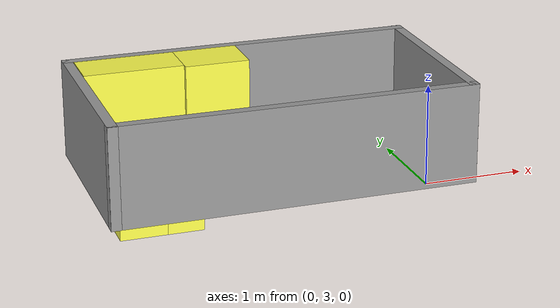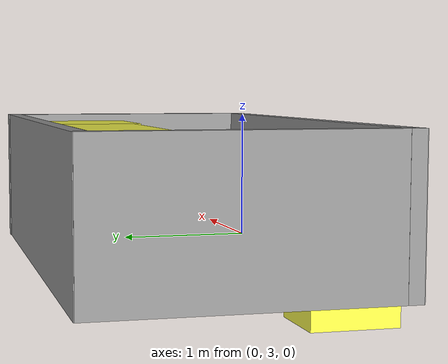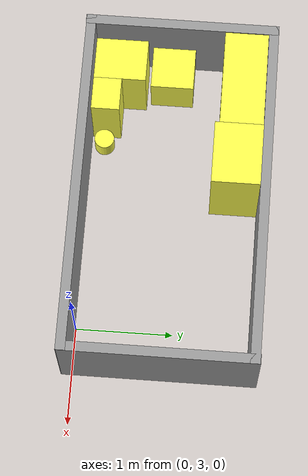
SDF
<?xml version='1.0'?>
<sdf version='1.7'>
  <model name='maze_d'>
    <link name='Wall_11'>
      <pose>-3.06869 3.88249 0 0 0 -1.5708</pose>
      <self_collide>0</self_collide>
      <enable_wind>0</enable_wind>
      <kinematic>0</kinematic>
      <gravity>1</gravity>
      <inertial>
        <mass>1</mass>
        <pose>0 0 0 0 -0 0</pose>
        <inertia>
          <ixx>1</ixx>
          <ixy>0</ixy>
          <ixz>0</ixz>
          <iyy>1</iyy>
          <iyz>0</iyz>
          <izz>1</izz>
        </inertia>
      </inertial>
      <visual name='Wall_11_Visual'>
        <pose>0 0 0.5 0 -0 0</pose>
        <geometry>
          <box>
            <size>2 0.1 1</size>
          </box>
        </geometry>
        <material>
          <script>
            <uri>file://media/materials/scripts/gazebo.material</uri>
            <name>Gazebo/Grey</name>
          </script>
          <ambient>1 1 1 1</ambient>
          <shader type='pixel'>
            <normal_map>__default__</normal_map>
          </shader>
          <diffuse>0.7 0.7 0.7 1</diffuse>
          <specular>0.01 0.01 0.01 1</specular>
          <emissive>0 0 0 1</emissive>
        </material>
        <transparency>0</transparency>
        <cast_shadows>1</cast_shadows>
      </visual>
      <collision name='Wall_11_Collision'>
        <laser_retro>0</laser_retro>
        <max_contacts>10</max_contacts>
        <pose>0 0 0.5 0 -0 0</pose>
        <geometry>
          <box>
            <size>2 0.1 1</size>
          </box>
        </geometry>
        <surface>
          <friction>
            <ode>
              <mu>1</mu>
              <mu2>1</mu2>
              <fdir1>0 0 0</fdir1>
              <slip1>0</slip1>
              <slip2>0</slip2>
            </ode>
            <torsional>
              <coefficient>1</coefficient>
              <patch_radius>0</patch_radius>
              <surface_radius>0</surface_radius>
              <use_patch_radius>1</use_patch_radius>
              <ode>
                <slip>0</slip>
              </ode>
            </torsional>
          </friction>
          <bounce>
            <restitution_coefficient>0</restitution_coefficient>
            <threshold>1e+06</threshold>
          </bounce>
          <contact>
            <collide_without_contact>0</collide_without_contact>
            <collide_without_contact_bitmask>1</collide_without_contact_bitmask>
            <collide_bitmask>1</collide_bitmask>
            <ode>
              <soft_cfm>0</soft_cfm>
              <soft_erp>0.2</soft_erp>
              <kp>1e+13</kp>
              <kd>1</kd>
              <max_vel>0.01</max_vel>
              <min_depth>0</min_depth>
            </ode>
            <bullet>
              <split_impulse>1</split_impulse>
              <split_impulse_penetration_threshold>-0.01</split_impulse_penetration_threshold>
              <soft_cfm>0</soft_cfm>
              <soft_erp>0.2</soft_erp>
              <kp>1e+13</kp>
              <kd>1</kd>
            </bullet>
          </contact>
        </surface>
      </collision>
    </link>
    <link name='Wall_11_clone'>
      <pose>0.434004 3.89294 0 0 0 -1.5708</pose>
      <self_collide>0</self_collide>
      <enable_wind>0</enable_wind>
      <kinematic>0</kinematic>
      <gravity>1</gravity>
      <inertial>
        <mass>1</mass>
        <pose>0 0 0 0 -0 0</pose>
        <inertia>
          <ixx>1</ixx>
          <ixy>0</ixy>
          <ixz>0</ixz>
          <iyy>1</iyy>
          <iyz>0</iyz>
          <izz>1</izz>
        </inertia>
      </inertial>
      <visual name='Wall_11_Visual'>
        <pose>0 0 0.5 0 -0 0</pose>
        <geometry>
          <box>
            <size>2 0.1 1</size>
          </box>
        </geometry>
        <material>
          <script>
            <uri>file://media/materials/scripts/gazebo.material</uri>
            <name>Gazebo/Grey</name>
          </script>
          <ambient>1 1 1 1</ambient>
          <shader type='pixel'>
            <normal_map>__default__</normal_map>
          </shader>
          <diffuse>0.7 0.7 0.7 1</diffuse>
          <specular>0.01 0.01 0.01 1</specular>
          <emissive>0 0 0 1</emissive>
        </material>
        <transparency>0</transparency>
        <cast_shadows>1</cast_shadows>
      </visual>
      <collision name='Wall_11_Collision'>
        <laser_retro>0</laser_retro>
        <max_contacts>10</max_contacts>
        <pose>0 0 0.5 0 -0 0</pose>
        <geometry>
          <box>
            <size>2 0.1 1</size>
          </box>
        </geometry>
        <surface>
          <friction>
            <ode>
              <mu>1</mu>
              <mu2>1</mu2>
              <fdir1>0 0 0</fdir1>
              <slip1>0</slip1>
              <slip2>0</slip2>
            </ode>
            <torsional>
              <coefficient>1</coefficient>
              <patch_radius>0</patch_radius>
              <surface_radius>0</surface_radius>
              <use_patch_radius>1</use_patch_radius>
              <ode>
                <slip>0</slip>
              </ode>
            </torsional>
          </friction>
          <bounce>
            <restitution_coefficient>0</restitution_coefficient>
            <threshold>1e+06</threshold>
          </bounce>
          <contact>
            <collide_without_contact>0</collide_without_contact>
            <collide_without_contact_bitmask>1</collide_without_contact_bitmask>
            <collide_bitmask>1</collide_bitmask>
            <ode>
              <soft_cfm>0</soft_cfm>
              <soft_erp>0.2</soft_erp>
              <kp>1e+13</kp>
              <kd>1</kd>
              <max_vel>0.01</max_vel>
              <min_depth>0</min_depth>
            </ode>
            <bullet>
              <split_impulse>1</split_impulse>
              <split_impulse_penetration_threshold>-0.01</split_impulse_penetration_threshold>
              <soft_cfm>0</soft_cfm>
              <soft_erp>0.2</soft_erp>
              <kp>1e+13</kp>
              <kd>1</kd>
            </bullet>
          </contact>
        </surface>
      </collision>
    </link>
    <link name='Wall_16_clone'>
      <pose>-1.31639 4.83807 0 0 -0 3.14159</pose>
      <self_collide>0</self_collide>
      <enable_wind>0</enable_wind>
      <kinematic>0</kinematic>
      <gravity>1</gravity>
      <inertial>
        <mass>1</mass>
        <pose>0 0 0 0 -0 0</pose>
        <inertia>
          <ixx>1</ixx>
          <ixy>0</ixy>
          <ixz>0</ixz>
          <iyy>1</iyy>
          <iyz>0</iyz>
          <izz>1</izz>
        </inertia>
      </inertial>
      <visual name='Wall_16_Visual'>
        <pose>0 0 0.5 0 -0 0</pose>
        <geometry>
          <box>
            <size>3.6 0.1 1</size>
          </box>
        </geometry>
        <material>
          <script>
            <uri>file://media/materials/scripts/gazebo.material</uri>
            <name>Gazebo/Grey</name>
          </script>
          <ambient>1 1 1 1</ambient>
          <shader type='pixel'>
            <normal_map>__default__</normal_map>
          </shader>
          <diffuse>0.7 0.7 0.7 1</diffuse>
          <specular>0.01 0.01 0.01 1</specular>
          <emissive>0 0 0 1</emissive>
        </material>
        <transparency>0</transparency>
        <cast_shadows>1</cast_shadows>
      </visual>
      <collision name='Wall_16_Collision'>
        <laser_retro>0</laser_retro>
        <max_contacts>10</max_contacts>
        <pose>0 0 0.5 0 -0 0</pose>
        <geometry>
          <box>
            <size>3.6 0.1 1</size>
          </box>
        </geometry>
        <surface>
          <friction>
            <ode>
              <mu>1</mu>
              <mu2>1</mu2>
              <fdir1>0 0 0</fdir1>
              <slip1>0</slip1>
              <slip2>0</slip2>
            </ode>
            <torsional>
              <coefficient>1</coefficient>
              <patch_radius>0</patch_radius>
              <surface_radius>0</surface_radius>
              <use_patch_radius>1</use_patch_radius>
              <ode>
                <slip>0</slip>
              </ode>
            </torsional>
          </friction>
          <bounce>
            <restitution_coefficient>0</restitution_coefficient>
            <threshold>1e+06</threshold>
          </bounce>
          <contact>
            <collide_without_contact>0</collide_without_contact>
            <collide_without_contact_bitmask>1</collide_without_contact_bitmask>
            <collide_bitmask>1</collide_bitmask>
            <ode>
              <soft_cfm>0</soft_cfm>
              <soft_erp>0.2</soft_erp>
              <kp>1e+13</kp>
              <kd>1</kd>
              <max_vel>0.01</max_vel>
              <min_depth>0</min_depth>
            </ode>
            <bullet>
              <split_impulse>1</split_impulse>
              <split_impulse_penetration_threshold>-0.01</split_impulse_penetration_threshold>
              <soft_cfm>0</soft_cfm>
              <soft_erp>0.2</soft_erp>
              <kp>1e+13</kp>
              <kd>1</kd>
            </bullet>
          </contact>
        </surface>
      </collision>
    </link>
    <link name='Wall_16_clone_clone'>
      <pose>-1.31935 2.93663 0 0 -0 3.14159</pose>
      <self_collide>0</self_collide>
      <enable_wind>0</enable_wind>
      <kinematic>0</kinematic>
      <gravity>1</gravity>
      <inertial>
        <mass>1</mass>
        <pose>0 0 0 0 -0 0</pose>
        <inertia>
          <ixx>1</ixx>
          <ixy>0</ixy>
          <ixz>0</ixz>
          <iyy>1</iyy>
          <iyz>0</iyz>
          <izz>1</izz>
        </inertia>
      </inertial>
      <visual name='Wall_16_Visual'>
        <pose>0 0 0.5 0 -0 0</pose>
        <geometry>
          <box>
            <size>3.6 0.1 1</size>
          </box>
        </geometry>
        <material>
          <script>
            <uri>file://media/materials/scripts/gazebo.material</uri>
            <name>Gazebo/Grey</name>
          </script>
          <ambient>1 1 1 1</ambient>
          <shader type='pixel'>
            <normal_map>__default__</normal_map>
          </shader>
          <diffuse>0.7 0.7 0.7 1</diffuse>
          <specular>0.01 0.01 0.01 1</specular>
          <emissive>0 0 0 1</emissive>
        </material>
        <transparency>0</transparency>
        <cast_shadows>1</cast_shadows>
      </visual>
      <collision name='Wall_16_Collision'>
        <laser_retro>0</laser_retro>
        <max_contacts>10</max_contacts>
        <pose>0 0 0.5 0 -0 0</pose>
        <geometry>
          <box>
            <size>3.6 0.1 1</size>
          </box>
        </geometry>
        <surface>
          <friction>
            <ode>
              <mu>1</mu>
              <mu2>1</mu2>
              <fdir1>0 0 0</fdir1>
              <slip1>0</slip1>
              <slip2>0</slip2>
            </ode>
            <torsional>
              <coefficient>1</coefficient>
              <patch_radius>0</patch_radius>
              <surface_radius>0</surface_radius>
              <use_patch_radius>1</use_patch_radius>
              <ode>
                <slip>0</slip>
              </ode>
            </torsional>
          </friction>
          <bounce>
            <restitution_coefficient>0</restitution_coefficient>
            <threshold>1e+06</threshold>
          </bounce>
          <contact>
            <collide_without_contact>0</collide_without_contact>
            <collide_without_contact_bitmask>1</collide_without_contact_bitmask>
            <collide_bitmask>1</collide_bitmask>
            <ode>
              <soft_cfm>0</soft_cfm>
              <soft_erp>0.2</soft_erp>
              <kp>1e+13</kp>
              <kd>1</kd>
              <max_vel>0.01</max_vel>
              <min_depth>0</min_depth>
            </ode>
            <bullet>
              <split_impulse>1</split_impulse>
              <split_impulse_penetration_threshold>-0.01</split_impulse_penetration_threshold>
              <soft_cfm>0</soft_cfm>
              <soft_erp>0.2</soft_erp>
              <kp>1e+13</kp>
              <kd>1</kd>
            </bullet>
          </contact>
        </surface>
      </collision>
    </link>
    <link name='link_0'>
      <inertial>
        <mass>1</mass>
        <inertia>
          <ixx>0.166667</ixx>
          <ixy>0</ixy>
          <ixz>0</ixz>
          <iyy>0.166667</iyy>
          <iyz>0</iyz>
          <izz>0.166667</izz>
        </inertia>
        <pose>0 0 0 0 -0 0</pose>
      </inertial>
      <pose>-2.51216 4.56133 0.5 0 -0 0</pose>
      <gravity>1</gravity>
      <self_collide>0</self_collide>
      <kinematic>0</kinematic>
      <enable_wind>0</enable_wind>
      <visual name='visual'>
        <pose>0 0 0 0 -0 0</pose>
        <geometry>
          <box>
            <size>1 0.45 1</size>
          </box>
        </geometry>
        <material>
          <lighting>1</lighting>
          <script>
            <uri>file://media/materials/scripts/gazebo.material</uri>
            <name>Gazebo/Grey</name>
          </script>
          <shader type='pixel'>
            <normal_map>__default__</normal_map>
          </shader>
          <ambient>1 1 0.3 1</ambient>
          <diffuse>0.7 0.7 0.7 1</diffuse>
          <specular>0.01 0.01 0.01 1</specular>
          <emissive>0 0 0 1</emissive>
        </material>
        <transparency>0</transparency>
        <cast_shadows>1</cast_shadows>
      </visual>
      <collision name='collision'>
        <laser_retro>0</laser_retro>
        <max_contacts>10</max_contacts>
        <pose>0 0 0 0 -0 0</pose>
        <geometry>
          <box>
            <size>1 0.45 1</size>
          </box>
        </geometry>
        <surface>
          <friction>
            <ode>
              <mu>1</mu>
              <mu2>1</mu2>
              <fdir1>0 0 0</fdir1>
              <slip1>0</slip1>
              <slip2>0</slip2>
            </ode>
            <torsional>
              <coefficient>1</coefficient>
              <patch_radius>0</patch_radius>
              <surface_radius>0</surface_radius>
              <use_patch_radius>1</use_patch_radius>
              <ode>
                <slip>0</slip>
              </ode>
            </torsional>
          </friction>
          <bounce>
            <restitution_coefficient>0</restitution_coefficient>
            <threshold>1e+06</threshold>
          </bounce>
          <contact>
            <collide_without_contact>0</collide_without_contact>
            <collide_without_contact_bitmask>1</collide_without_contact_bitmask>
            <collide_bitmask>1</collide_bitmask>
            <ode>
              <soft_cfm>0</soft_cfm>
              <soft_erp>0.2</soft_erp>
              <kp>1e+13</kp>
              <kd>1</kd>
              <max_vel>0.01</max_vel>
              <min_depth>0</min_depth>
            </ode>
            <bullet>
              <split_impulse>1</split_impulse>
              <split_impulse_penetration_threshold>-0.01</split_impulse_penetration_threshold>
              <soft_cfm>0</soft_cfm>
              <soft_erp>0.2</soft_erp>
              <kp>1e+13</kp>
              <kd>1</kd>
            </bullet>
          </contact>
        </surface>
      </collision>
    </link>
    <link name='link_1'>
      <inertial>
        <mass>1</mass>
        <inertia>
          <ixx>0.166667</ixx>
          <ixy>0</ixy>
          <ixz>0</ixz>
          <iyy>0.166667</iyy>
          <iyz>0</iyz>
          <izz>0.166667</izz>
        </inertia>
        <pose>0 0 0 0 -0 0</pose>
      </inertial>
      <pose>-1.6875 4.53905 0.5 0 -0 0</pose>
      <gravity>1</gravity>
      <self_collide>0</self_collide>
      <kinematic>0</kinematic>
      <enable_wind>0</enable_wind>
      <visual name='visual'>
        <pose>0 0 0 0 -0 0</pose>
        <geometry>
          <box>
            <size>0.65 0.5 1</size>
          </box>
        </geometry>
        <material>
          <lighting>1</lighting>
          <script>
            <uri>file://media/materials/scripts/gazebo.material</uri>
            <name>Gazebo/Grey</name>
          </script>
          <shader type='pixel'>
            <normal_map>__default__</normal_map>
          </shader>
          <ambient>1 1 0.3 1</ambient>
          <diffuse>0.7 0.7 0.7 1</diffuse>
          <specular>0.01 0.01 0.01 1</specular>
          <emissive>0 0 0 1</emissive>
        </material>
        <transparency>0</transparency>
        <cast_shadows>1</cast_shadows>
      </visual>
      <collision name='collision'>
        <laser_retro>0</laser_retro>
        <max_contacts>10</max_contacts>
        <pose>0 0 0 0 -0 0</pose>
        <geometry>
          <box>
            <size>0.65 0.5 1</size>
          </box>
        </geometry>
        <surface>
          <friction>
            <ode>
              <mu>1</mu>
              <mu2>1</mu2>
              <fdir1>0 0 0</fdir1>
              <slip1>0</slip1>
              <slip2>0</slip2>
            </ode>
            <torsional>
              <coefficient>1</coefficient>
              <patch_radius>0</patch_radius>
              <surface_radius>0</surface_radius>
              <use_patch_radius>1</use_patch_radius>
              <ode>
                <slip>0</slip>
              </ode>
            </torsional>
          </friction>
          <bounce>
            <restitution_coefficient>0</restitution_coefficient>
            <threshold>1e+06</threshold>
          </bounce>
          <contact>
            <collide_without_contact>0</collide_without_contact>
            <collide_without_contact_bitmask>1</collide_without_contact_bitmask>
            <collide_bitmask>1</collide_bitmask>
            <ode>
              <soft_cfm>0</soft_cfm>
              <soft_erp>0.2</soft_erp>
              <kp>1e+13</kp>
              <kd>1</kd>
              <max_vel>0.01</max_vel>
              <min_depth>0</min_depth>
            </ode>
            <bullet>
              <split_impulse>1</split_impulse>
              <split_impulse_penetration_threshold>-0.01</split_impulse_penetration_threshold>
              <soft_cfm>0</soft_cfm>
              <soft_erp>0.2</soft_erp>
              <kp>1e+13</kp>
              <kd>1</kd>
            </bullet>
          </contact>
        </surface>
      </collision>
    </link>
    <link name='link_2'>
      <inertial>
        <mass>1</mass>
        <inertia>
          <ixx>0.166667</ixx>
          <ixy>0</ixy>
          <ixz>0</ixz>
          <iyy>0.166667</iyy>
          <iyz>0</iyz>
          <izz>0.166667</izz>
        </inertia>
        <pose>0 0 0 0 -0 0</pose>
      </inertial>
      <pose>-2.79472 3.81051 0.250855 0 -0 0</pose>
      <gravity>1</gravity>
      <self_collide>0</self_collide>
      <kinematic>0</kinematic>
      <enable_wind>0</enable_wind>
      <visual name='visual'>
        <pose>0 0 0 0 -0 0</pose>
        <geometry>
          <box>
            <size>0.45 0.45 0.5</size>
          </box>
        </geometry>
        <material>
          <lighting>1</lighting>
          <script>
            <uri>file://media/materials/scripts/gazebo.material</uri>
            <name>Gazebo/Grey</name>
          </script>
          <shader type='pixel'>
            <normal_map>__default__</normal_map>
          </shader>
          <ambient>1 1 0.3 1</ambient>
          <diffuse>0.7 0.7 0.7 1</diffuse>
          <specular>0.01 0.01 0.01 1</specular>
          <emissive>0 0 0 1</emissive>
        </material>
        <transparency>0</transparency>
        <cast_shadows>1</cast_shadows>
      </visual>
      <collision name='collision'>
        <laser_retro>0</laser_retro>
        <max_contacts>10</max_contacts>
        <pose>0 0 0 0 -0 0</pose>
        <geometry>
          <box>
            <size>0.45 0.45 0.5</size>
          </box>
        </geometry>
        <surface>
          <friction>
            <ode>
              <mu>1</mu>
              <mu2>1</mu2>
              <fdir1>0 0 0</fdir1>
              <slip1>0</slip1>
              <slip2>0</slip2>
            </ode>
            <torsional>
              <coefficient>1</coefficient>
              <patch_radius>0</patch_radius>
              <surface_radius>0</surface_radius>
              <use_patch_radius>1</use_patch_radius>
              <ode>
                <slip>0</slip>
              </ode>
            </torsional>
          </friction>
          <bounce>
            <restitution_coefficient>0</restitution_coefficient>
            <threshold>1e+06</threshold>
          </bounce>
          <contact>
            <collide_without_contact>0</collide_without_contact>
            <collide_without_contact_bitmask>1</collide_without_contact_bitmask>
            <collide_bitmask>1</collide_bitmask>
            <ode>
              <soft_cfm>0</soft_cfm>
              <soft_erp>0.2</soft_erp>
              <kp>1e+13</kp>
              <kd>1</kd>
              <max_vel>0.01</max_vel>
              <min_depth>0</min_depth>
            </ode>
            <bullet>
              <split_impulse>1</split_impulse>
              <split_impulse_penetration_threshold>-0.01</split_impulse_penetration_threshold>
              <soft_cfm>0</soft_cfm>
              <soft_erp>0.2</soft_erp>
              <kp>1e+13</kp>
              <kd>1</kd>
            </bullet>
          </contact>
        </surface>
      </collision>
    </link>
    <link name='link_2_clone'>
      <inertial>
        <mass>1</mass>
        <inertia>
          <ixx>0.166667</ixx>
          <ixy>0</ixy>
          <ixz>0</ixz>
          <iyy>0.166667</iyy>
          <iyz>0</iyz>
          <izz>0.166667</izz>
        </inertia>
        <pose>0 0 0 0 -0 0</pose>
      </inertial>
      <pose>-2.79218 3.25815 0.250855 0 -0 0</pose>
      <gravity>1</gravity>
      <self_collide>0</self_collide>
      <kinematic>0</kinematic>
      <enable_wind>0</enable_wind>
      <visual name='visual'>
        <pose>0 0 0 0 -0 0</pose>
        <geometry>
          <box>
            <size>0.45 0.55 0.8</size>
          </box>
        </geometry>
        <material>
          <lighting>1</lighting>
          <script>
            <uri>file://media/materials/scripts/gazebo.material</uri>
            <name>Gazebo/Grey</name>
          </script>
          <shader type='pixel'>
            <normal_map>__default__</normal_map>
          </shader>
          <ambient>1 1 0.3 1</ambient>
          <diffuse>0.7 0.7 0.7 1</diffuse>
          <specular>0.01 0.01 0.01 1</specular>
          <emissive>0 0 0 1</emissive>
        </material>
        <transparency>0</transparency>
        <cast_shadows>1</cast_shadows>
      </visual>
      <collision name='collision'>
        <laser_retro>0</laser_retro>
        <max_contacts>10</max_contacts>
        <pose>0 0 0 0 -0 0</pose>
        <geometry>
          <box>
            <size>0.45 0.55 0.8</size>
          </box>
        </geometry>
        <surface>
          <friction>
            <ode>
              <mu>1</mu>
              <mu2>1</mu2>
              <fdir1>0 0 0</fdir1>
              <slip1>0</slip1>
              <slip2>0</slip2>
            </ode>
            <torsional>
              <coefficient>1</coefficient>
              <patch_radius>0</patch_radius>
              <surface_radius>0</surface_radius>
              <use_patch_radius>1</use_patch_radius>
              <ode>
                <slip>0</slip>
              </ode>
            </torsional>
          </friction>
          <bounce>
            <restitution_coefficient>0</restitution_coefficient>
            <threshold>1e+06</threshold>
          </bounce>
          <contact>
            <collide_without_contact>0</collide_without_contact>
            <collide_without_contact_bitmask>1</collide_without_contact_bitmask>
            <collide_bitmask>1</collide_bitmask>
            <ode>
              <soft_cfm>0</soft_cfm>
              <soft_erp>0.2</soft_erp>
              <kp>1e+13</kp>
              <kd>1</kd>
              <max_vel>0.01</max_vel>
              <min_depth>0</min_depth>
            </ode>
            <bullet>
              <split_impulse>1</split_impulse>
              <split_impulse_penetration_threshold>-0.01</split_impulse_penetration_threshold>
              <soft_cfm>0</soft_cfm>
              <soft_erp>0.2</soft_erp>
              <kp>1e+13</kp>
              <kd>1</kd>
            </bullet>
          </contact>
        </surface>
      </collision>
    </link>
    <link name='link_2_clone_clone'>
      <inertial>
        <mass>1</mass>
        <inertia>
          <ixx>0.166667</ixx>
          <ixy>0</ixy>
          <ixz>0</ixz>
          <iyy>0.166667</iyy>
          <iyz>0</iyz>
          <izz>0.166667</izz>
        </inertia>
        <pose>0 0 0 0 -0 0</pose>
      </inertial>
      <pose>-2.3925 3.13299 0.250855 0 -0 0</pose>
      <gravity>1</gravity>
      <self_collide>0</self_collide>
      <kinematic>0</kinematic>
      <enable_wind>0</enable_wind>
      <visual name='visual'>
        <pose>0 0 0 0 -0 0</pose>
        <geometry>
          <box>
            <size>0.35 0.3 0.8</size>
          </box>
        </geometry>
        <material>
          <lighting>1</lighting>
          <script>
            <uri>file://media/materials/scripts/gazebo.material</uri>
            <name>Gazebo/Grey</name>
          </script>
          <shader type='pixel'>
            <normal_map>__default__</normal_map>
          </shader>
          <ambient>1 1 0.3 1</ambient>
          <diffuse>0.7 0.7 0.7 1</diffuse>
          <specular>0.01 0.01 0.01 1</specular>
          <emissive>0 0 0 1</emissive>
        </material>
        <transparency>0</transparency>
        <cast_shadows>1</cast_shadows>
      </visual>
      <collision name='collision'>
        <laser_retro>0</laser_retro>
        <max_contacts>10</max_contacts>
        <pose>0 0 0 0 -0 0</pose>
        <geometry>
          <box>
            <size>0.35 0.3 0.8</size>
          </box>
        </geometry>
        <surface>
          <friction>
            <ode>
              <mu>1</mu>
              <mu2>1</mu2>
              <fdir1>0 0 0</fdir1>
              <slip1>0</slip1>
              <slip2>0</slip2>
            </ode>
            <torsional>
              <coefficient>1</coefficient>
              <patch_radius>0</patch_radius>
              <surface_radius>0</surface_radius>
              <use_patch_radius>1</use_patch_radius>
              <ode>
                <slip>0</slip>
              </ode>
            </torsional>
          </friction>
          <bounce>
            <restitution_coefficient>0</restitution_coefficient>
            <threshold>1e+06</threshold>
          </bounce>
          <contact>
            <collide_without_contact>0</collide_without_contact>
            <collide_without_contact_bitmask>1</collide_without_contact_bitmask>
            <collide_bitmask>1</collide_bitmask>
            <ode>
              <soft_cfm>0</soft_cfm>
              <soft_erp>0.2</soft_erp>
              <kp>1e+13</kp>
              <kd>1</kd>
              <max_vel>0.01</max_vel>
              <min_depth>0</min_depth>
            </ode>
            <bullet>
              <split_impulse>1</split_impulse>
              <split_impulse_penetration_threshold>-0.01</split_impulse_penetration_threshold>
              <soft_cfm>0</soft_cfm>
              <soft_erp>0.2</soft_erp>
              <kp>1e+13</kp>
              <kd>1</kd>
            </bullet>
          </contact>
        </surface>
      </collision>
    </link>
    <link name='link_3'>
      <inertial>
        <mass>0.0908378</mass>
        <inertia>
          <ixx>0.00058354</ixx>
          <ixy>0</ixy>
          <ixz>0</ixz>
          <iyy>0.00058354</iyy>
          <iyz>0</iyz>
          <izz>0.0004961</izz>
        </inertia>
        <pose>0 0 0 0 -0 0</pose>
      </inertial>
      <pose>-2.05411 3.12715 0.114199 0 -0 0</pose>
      <gravity>1</gravity>
      <self_collide>0</self_collide>
      <kinematic>0</kinematic>
      <enable_wind>0</enable_wind>
      <visual name='visual'>
        <pose>0 0 0 0 -0 0</pose>
        <geometry>
          <cylinder>
            <radius>0.104512</radius>
            <length>0.210521</length>
          </cylinder>
        </geometry>
        <material>
          <lighting>1</lighting>
          <script>
            <uri>file://media/materials/scripts/gazebo.material</uri>
            <name>Gazebo/Grey</name>
          </script>
          <shader type='pixel'>
            <normal_map>__default__</normal_map>
          </shader>
          <ambient>1 1 0.3 1</ambient>
          <diffuse>0.7 0.7 0.7 1</diffuse>
          <specular>0.01 0.01 0.01 1</specular>
          <emissive>0 0 0 1</emissive>
        </material>
        <transparency>0</transparency>
        <cast_shadows>1</cast_shadows>
      </visual>
      <collision name='collision'>
        <laser_retro>0</laser_retro>
        <max_contacts>10</max_contacts>
        <pose>0 0 0 0 -0 0</pose>
        <geometry>
          <cylinder>
            <radius>0.104512</radius>
            <length>0.210521</length>
          </cylinder>
        </geometry>
        <surface>
          <friction>
            <ode>
              <mu>1</mu>
              <mu2>1</mu2>
              <fdir1>0 0 0</fdir1>
              <slip1>0</slip1>
              <slip2>0</slip2>
            </ode>
            <torsional>
              <coefficient>1</coefficient>
              <patch_radius>0</patch_radius>
              <surface_radius>0</surface_radius>
              <use_patch_radius>1</use_patch_radius>
              <ode>
                <slip>0</slip>
              </ode>
            </torsional>
          </friction>
          <bounce>
            <restitution_coefficient>0</restitution_coefficient>
            <threshold>1e+06</threshold>
          </bounce>
          <contact>
            <collide_without_contact>0</collide_without_contact>
            <collide_without_contact_bitmask>1</collide_without_contact_bitmask>
            <collide_bitmask>1</collide_bitmask>
            <ode>
              <soft_cfm>0</soft_cfm>
              <soft_erp>0.2</soft_erp>
              <kp>1e+13</kp>
              <kd>1</kd>
              <max_vel>0.01</max_vel>
              <min_depth>0</min_depth>
            </ode>
            <bullet>
              <split_impulse>1</split_impulse>
              <split_impulse_penetration_threshold>-0.01</split_impulse_penetration_threshold>
              <soft_cfm>0</soft_cfm>
              <soft_erp>0.2</soft_erp>
              <kp>1e+13</kp>
              <kd>1</kd>
            </bullet>
          </contact>
        </surface>
      </collision>
    </link>
    <joint name='Wall_11_JOINT_0' type='fixed'>
      <parent>Wall_11</parent>
      <child>Wall_16_clone_clone</child>
      <pose>0 0 0 0 -0 0</pose>
      <physics>
        <ode>
          <limit>
            <cfm>0</cfm>
            <erp>0.2</erp>
          </limit>
          <suspension>
            <cfm>0</cfm>
            <erp>0.2</erp>
          </suspension>
        </ode>
      </physics>
    </joint>
    <joint name='Wall_11_JOINT_9' type='fixed'>
      <parent>Wall_11</parent>
      <child>link_2</child>
      <pose>0 0 0 0 -0 0</pose>
      <physics>
        <ode>
          <limit>
            <cfm>0</cfm>
            <erp>0.2</erp>
          </limit>
          <suspension>
            <cfm>0</cfm>
            <erp>0.2</erp>
          </suspension>
        </ode>
      </physics>
    </joint>
    <joint name='Wall_16_clone_JOINT_2' type='fixed'>
      <parent>Wall_16_clone</parent>
      <child>Wall_11_clone</child>
      <pose>0 0 0 0 -0 0</pose>
      <physics>
        <ode>
          <limit>
            <cfm>0</cfm>
            <erp>0.2</erp>
          </limit>
          <suspension>
            <cfm>0</cfm>
            <erp>0.2</erp>
          </suspension>
        </ode>
      </physics>
    </joint>
    <joint name='Wall_16_clone_JOINT_4' type='fixed'>
      <parent>Wall_16_clone</parent>
      <child>Wall_11</child>
      <pose>0 0 0 0 -0 0</pose>
      <physics>
        <ode>
          <limit>
            <cfm>0</cfm>
            <erp>0.2</erp>
          </limit>
          <suspension>
            <cfm>0</cfm>
            <erp>0.2</erp>
          </suspension>
        </ode>
      </physics>
    </joint>
    <joint name='Wall_16_clone_clone_JOINT_1' type='fixed'>
      <parent>Wall_16_clone_clone</parent>
      <child>Wall_11_clone</child>
      <pose>0 0 0 0 -0 0</pose>
      <physics>
        <ode>
          <limit>
            <cfm>0</cfm>
            <erp>0.2</erp>
          </limit>
          <suspension>
            <cfm>0</cfm>
            <erp>0.2</erp>
          </suspension>
        </ode>
      </physics>
    </joint>
    <joint name='link_0_JOINT_7' type='fixed'>
      <parent>link_0</parent>
      <child>link_1</child>
      <pose>0 0 0 0 -0 0</pose>
      <physics>
        <ode>
          <limit>
            <cfm>0</cfm>
            <erp>0.2</erp>
          </limit>
          <suspension>
            <cfm>0</cfm>
            <erp>0.2</erp>
          </suspension>
        </ode>
      </physics>
    </joint>
    <joint name='link_2_JOINT_6' type='fixed'>
      <parent>link_2</parent>
      <child>link_0</child>
      <pose>0 0 0 0 -0 0</pose>
      <physics>
        <ode>
          <limit>
            <cfm>0</cfm>
            <erp>0.2</erp>
          </limit>
          <suspension>
            <cfm>0</cfm>
            <erp>0.2</erp>
          </suspension>
        </ode>
      </physics>
    </joint>
    <joint name='link_2_clone_JOINT_5' type='fixed'>
      <parent>link_2_clone</parent>
      <child>link_2</child>
      <pose>0 0 0 0 -0 0</pose>
      <physics>
        <ode>
          <limit>
            <cfm>0</cfm>
            <erp>0.2</erp>
          </limit>
          <suspension>
            <cfm>0</cfm>
            <erp>0.2</erp>
          </suspension>
        </ode>
      </physics>
    </joint>
    <joint name='link_2_clone_clone_JOINT_4' type='fixed'>
      <parent>link_2_clone_clone</parent>
      <child>link_2_clone</child>
      <pose>0 0 0 0 -0 0</pose>
      <physics>
        <ode>
          <limit>
            <cfm>0</cfm>
            <erp>0.2</erp>
          </limit>
          <suspension>
            <cfm>0</cfm>
            <erp>0.2</erp>
          </suspension>
        </ode>
      </physics>
    </joint>
    <joint name='link_3_JOINT_3' type='fixed'>
      <parent>link_3</parent>
      <child>link_2_clone_clone</child>
      <pose>0 0 0 0 -0 0</pose>
      <physics>
        <ode>
          <limit>
            <cfm>0</cfm>
            <erp>0.2</erp>
          </limit>
          <suspension>
            <cfm>0</cfm>
            <erp>0.2</erp>
          </suspension>
        </ode>
      </physics>
    </joint>
    <static>1</static>
    <allow_auto_disable>1</allow_auto_disable>
  </model>
</sdf>
